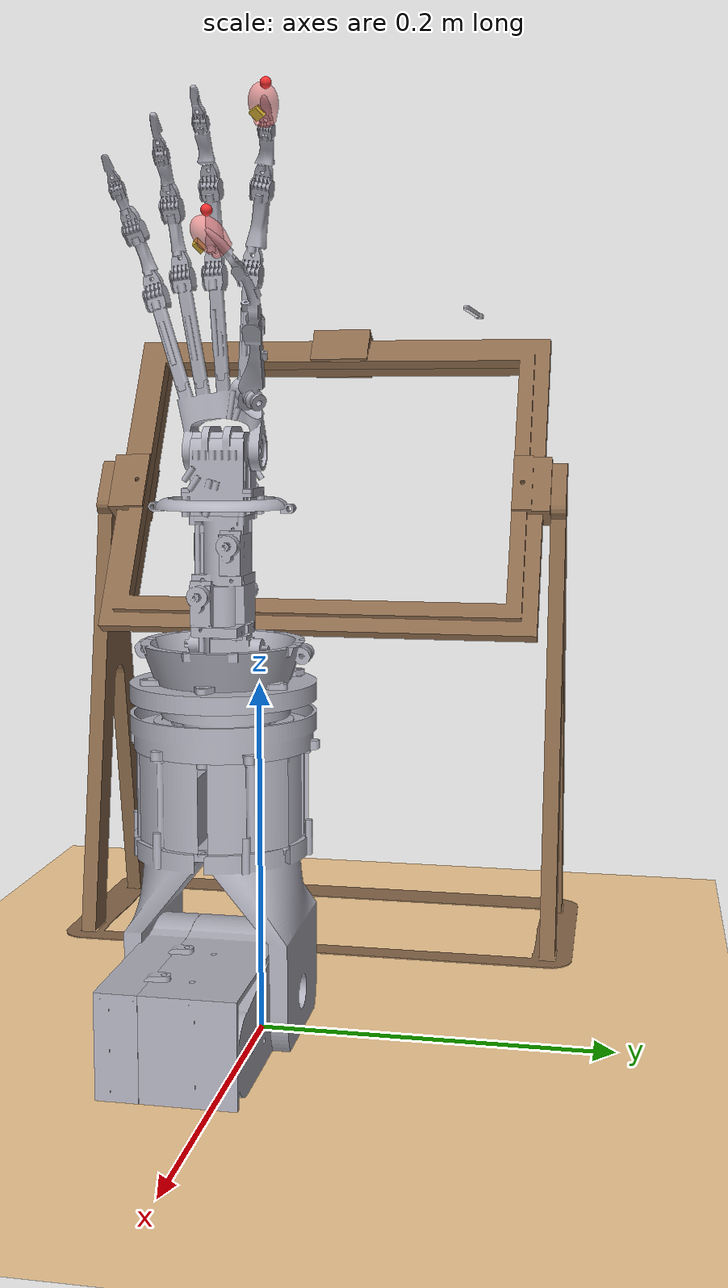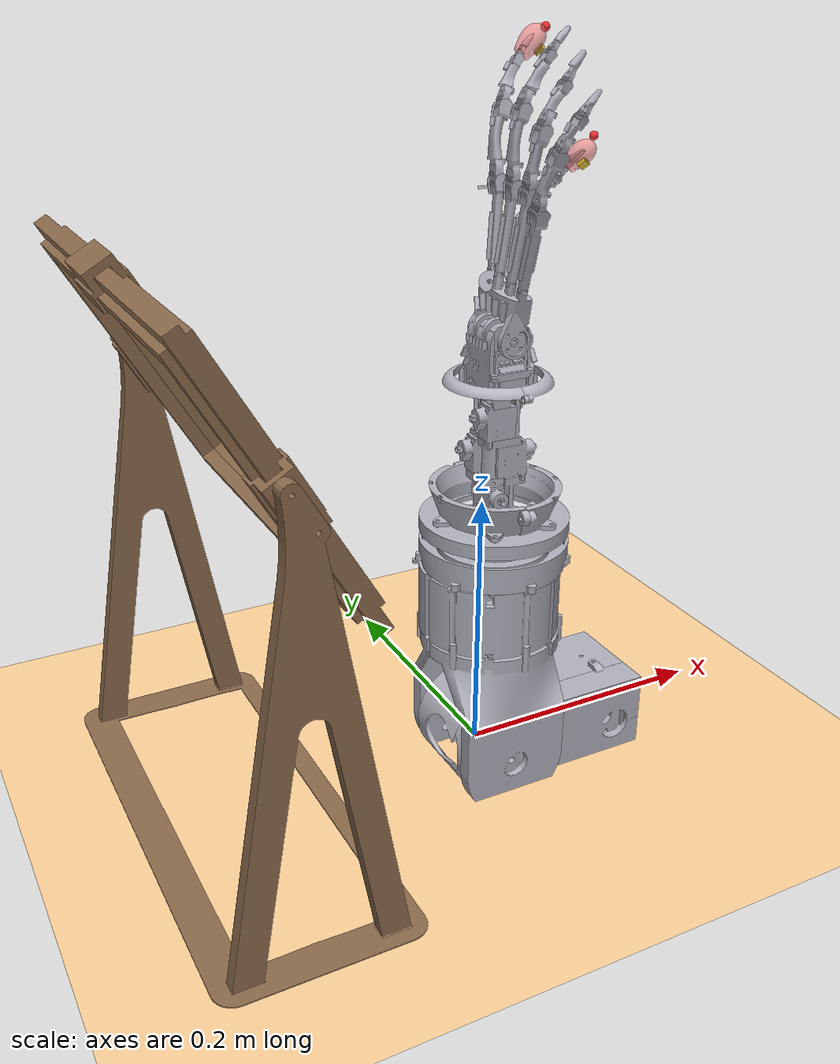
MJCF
<mujoco model="palm">

    <compiler angle="radian" meshdir="." />
    <option timestep="0.001" gravity="0 0 0" integrator="implicitfast" />

    <default>
        <!-- TUNE: contacts are OFF by default so the model loads and moves
             without self-intersecting meshes exploding the sim. Set
             contype="1" conaffinity="1" once you want grasping. -->
        <geom contype="0" conaffinity="0" rgba="0.7 0.7 0.75 1" />
        <!-- TUNE: damping/stiffness are guesses. Fit against hardware. -->
        <joint damping="0.5" armature="0.01" limited="true" />
        <position kp="150" kv="8" ctrllimited="true" />
    </default>

    <asset>
        <mesh name="base1" file="meshes/base1.stl" scale="0.001 0.001 0.001" />
        <mesh name="elbow_case2-v1" file="meshes/elbow_case2-v1.stl" scale="0.001 0.001 0.001" />
        <mesh name="elbow_main1" file="meshes/elbow_main1.stl" scale="0.001 0.001 0.001" />
        <mesh name="elbow_main2" file="meshes/elbow_main2.stl" scale="0.001 0.001 0.001" />
        <mesh name="case_midarm2" file="meshes/case_midarm2.stl" scale="0.001 0.001 0.001" />
        <mesh name="case_midarm" file="meshes/case_midarm.stl" scale="0.001 0.001 0.001" />
        <mesh name="midarm1" file="meshes/midarm1.stl" scale="0.001 0.001 0.001" />
        <mesh name="bearing_cap_midarm" file="meshes/bearing_cap_midarm.stl" scale="0.001 0.001 0.001" />
        <mesh name="bottom_rotation-wheel" file="meshes/bottom_rotation-wheel.stl" scale="0.001 0.001 0.001" />
        <mesh name="top_rotation-wheel" file="meshes/top_rotation-wheel.stl" scale="0.001 0.001 0.001" />
        <mesh name="inside_rotation_bearing_frame" file="meshes/inside_rotation_bearing_frame.stl" scale="0.001 0.001 0.001" />
        <mesh name="inside_rotation-cog" file="meshes/inside_rotation-cog.stl" scale="0.001 0.001 0.001" />
        <mesh name="inside_rotation_wheel" file="meshes/inside_rotation_wheel.stl" scale="0.001 0.001 0.001" />
        <mesh name="midarm_frame1" file="meshes/midarm_frame1.stl" scale="0.001 0.001 0.001" />
        <mesh name="midarm_frame2" file="meshes/midarm_frame2.stl" scale="0.001 0.001 0.001" />
        <mesh name="midarm_frame3" file="meshes/midarm_frame3.stl" scale="0.001 0.001 0.001" />
        <mesh name="midarm_frame4" file="meshes/midarm_frame4.stl" scale="0.001 0.001 0.001" />
        <mesh name="servo_base" file="meshes/servo_base.stl" scale="0.001 0.001 0.001" />
        <mesh name="finger_servo1" file="meshes/finger_servo1.stl" scale="0.001 0.001 0.001" />
        <mesh name="servo_wrist" file="meshes/servo_wrist.stl" scale="0.001 0.001 0.001" />
        <mesh name="wrist_servo_plat1" file="meshes/wrist_servo_plat1.stl" scale="0.001 0.001 0.001" />
        <mesh name="wrist_servo_plat2" file="meshes/wrist_servo_plat2.stl" scale="0.001 0.001 0.001" />
        <mesh name="wristframe_main" file="meshes/wristframe_main.stl" scale="0.001 0.001 0.001" />
        <mesh name="wristframe" file="meshes/wristframe.stl" scale="0.001 0.001 0.001" />
        <mesh name="wristframe2" file="meshes/wristframe2.stl" scale="0.001 0.001 0.001" />
        <mesh name="wrist" file="meshes/wrist.stl" scale="0.001 0.001 0.001" />
        <mesh name="saddle_1-1" file="meshes/saddle_1-1.stl" scale="0.001 0.001 0.001" />
        <mesh name="saddle_2-1" file="meshes/saddle_2-1.stl" scale="0.001 0.001 0.001" />
        <mesh name="thumb_mcp" file="meshes/thumb_mcp.stl" scale="0.001 0.001 0.001" />
        <mesh name="thumb_pip" file="meshes/thumb_pip.stl" scale="0.001 0.001 0.001" />
        <mesh name="thumb_tip" file="meshes/thumb_tip.stl" scale="0.001 0.001 0.001" />
        <mesh name="index_mcp" file="meshes/index_mcp.stl" scale="0.001 0.001 0.001" />
        <mesh name="index_pip" file="meshes/index_pip.stl" scale="0.001 0.001 0.001" />
        <mesh name="index_mip" file="meshes/index_mip.stl" scale="0.001 0.001 0.001" />
        <mesh name="index_tip" file="meshes/index_tip.stl" scale="0.001 0.001 0.001" />
        <mesh name="mid_mcp" file="meshes/mid_mcp.stl" scale="0.001 0.001 0.001" />
        <mesh name="middle_pip" file="meshes/middle_pip.stl" scale="0.001 0.001 0.001" />
        <mesh name="mid_mip" file="meshes/mid_mip.stl" scale="0.001 0.001 0.001" />
        <mesh name="mid_tip" file="meshes/mid_tip.stl" scale="0.001 0.001 0.001" />
        <mesh name="ring_mcp" file="meshes/ring_mcp.stl" scale="0.001 0.001 0.001" />
        <mesh name="ring_pip" file="meshes/ring_pip.stl" scale="0.001 0.001 0.001" />
        <mesh name="ring_mip" file="meshes/ring_mip.stl" scale="0.001 0.001 0.001" />
        <mesh name="ring_tip" file="meshes/ring_tip.stl" scale="0.001 0.001 0.001" />
        <mesh name="small_mcp" file="meshes/small_mcp.stl" scale="0.001 0.001 0.001" />
        <mesh name="small_pip" file="meshes/small_pip.stl" scale="0.001 0.001 0.001" />
        <mesh name="small_mip" file="meshes/small_mip.stl" scale="0.001 0.001 0.001" />
        <mesh name="small_tip" file="meshes/small_tip.stl" scale="0.001 0.001 0.001" />
        <mesh name="fr_base-1" file="meshes/base-1.stl" scale="0.001 0.001 0.001" />
        <mesh name="fr_arm1-1" file="meshes/arm1-1.stl" scale="0.001 0.001 0.001" />
        <mesh name="fr_arm2-1" file="meshes/arm2-1.stl" scale="0.001 0.001 0.001" />
        <mesh name="fr_frame_clipper1" file="meshes/frame_clipper1.stl" scale="0.001 0.001 0.001" />
        <mesh name="fr_frame_clipper2" file="meshes/frame_clipper2.stl" scale="0.001 0.001 0.001" />
        <mesh name="fr_outer_frame-1" file="meshes/outer_frame-1.stl" scale="0.001 0.001 0.001" />
        <mesh name="fr_inside_frame" file="meshes/inside_frame.stl" scale="0.001 0.001 0.001" />
        <mesh name="fr_top_clipper" file="meshes/top_clipper.stl" scale="0.001 0.001 0.001" />
        <mesh name="finger_pad" file="meshes/finger_pad.stl" scale="0.001 0.001 0.001" />
        <mesh name="craft_needle" file="meshes/Craft_Needle.STL" scale="0.001 0.001 0.001"/>
    </asset>

    <worldbody>
        <light directional="true" pos="-0.5 0.5 3" dir="0 0 -1" />

        <body name="sewing_frame" pos="-0.187 -0.135 0" euler="0 0 0">
            <geom name="fr_base-1_geom" type="mesh" mesh="fr_base-1" pos="0 0 0" euler="0 0 0" contype="1" conaffinity="1" rgba="0.55 0.42 0.30 1" />
            <geom name="fr_arm1-1_geom" type="mesh" mesh="fr_arm1-1" pos="0 0 0" euler="0 0 0" contype="1" conaffinity="1" rgba="0.55 0.42 0.30 1" />
            <geom name="fr_arm2-1_geom" type="mesh" mesh="fr_arm2-1" pos="0 0 0" euler="0 0 0" contype="1" conaffinity="1" rgba="0.55 0.42 0.30 1" />
            <geom name="fr_frame_clipper1_geom" type="mesh" mesh="fr_frame_clipper1" pos="0 0 0" euler="0 0 0" contype="1" conaffinity="1" rgba="0.55 0.42 0.30 1" />
            <geom name="fr_frame_clipper2_geom" type="mesh" mesh="fr_frame_clipper2" pos="0 0 0" euler="0 0 0" contype="1" conaffinity="1" rgba="0.55 0.42 0.30 1" />
            <geom name="fr_outer_frame-1_geom" type="mesh" mesh="fr_outer_frame-1" pos="0 0 0" euler="0 0 0" contype="1" conaffinity="1" rgba="0.55 0.42 0.30 1" />
            <geom name="fr_inside_frame_geom" type="mesh" mesh="fr_inside_frame" pos="0 0 0" euler="0 0 0" contype="1" conaffinity="1" rgba="0.55 0.42 0.30 1" />
            <geom name="fr_top_clipper_geom" type="mesh" mesh="fr_top_clipper" pos="0 0 0" euler="0 0 0" contype="1" conaffinity="1" rgba="0.55 0.42 0.30 1" />
        </body>

        <geom name="floor" pos="0 0 0" size="1 1 1" type="plane" rgba="1 0.83 0.61 0.5" contype="1" conaffinity="1" />

        <body name="base1" pos="0 0 0.43" euler="0 0 0">
            <geom name="base1_geom" type="mesh" mesh="base1" pos="0 0 0" euler="0 0 0" />
            <!-- HARDWARE: printed shell 0.106 + 40T steel pulley 0.303 + 20T steel pulley
                 0.073 + HTD5M-9 belt 0.015 + STS3215 elbow servo 0.060 = 0.557 kg. -->
            <inertial mass="0.557" pos="0.03507294455526667 -0.0033303212525474858 -0.40908124270524016" fullinertia="5.60e-04 1.53e-03 1.22e-03 4.55e-05 4.54e-06 -7.62e-07" />

            <!-- Rigid 54: base1 <-> elbow_case2 -->
            <body name="elbow_case2-v1" pos="0 0 4.399708861372683" euler="0 0 0">
                <geom name="elbow_case2-v1_geom" type="mesh" mesh="elbow_case2-v1" pos="0 0 0" euler="0 0 0" />
                <!-- HARDWARE: printed 0.072 + STS3215 rotation servo 0.060 = 0.132 kg. -->
                <inertial mass="0.132" pos="0.04384490458014511 -0.05333605265141133 -4.8088695397835695" fullinertia="9.30e-05 3.61e-04 2.92e-04 -5.67e-06 1.79e-06 -6.92e-08" />

                <!-- Revolute 3: elbow hinge -->
                <body name="elbow_main1" pos="5.879116354193498e-05 -0.0003142633200703493 -4.399999970086164" euler="1.8991159259421016e-14 -9.273428489272168e-17 0.0015654847778752356">
                    <joint name="elbow_pitch" type="hinge" axis="0.0015654841384419441 0.9999987746289554 -1.8991159259421016e-14" pos="-0.002206516384655231 0.013817346826342903 -0.4078658912865194" range="-1.57 1.57" />
                    <geom name="elbow_main1_geom" type="mesh" mesh="elbow_main1" pos="0 0 0" euler="0 0 0" />
                    <inertial mass="0.12482675968783168" pos="-0.0031999516665286946 0.012338962940966779 -0.3671555865065753" fullinertia="0.00017904554845469926 0.00023903218398388653 8.201842849256508e-05 -8.207704843175467e-07 4.334989205591768e-06 2.5905204598673402e-05" />

                    <!-- Rigid 32 -->
                    <body name="case_midarm2" pos="-0.0005856373134274425 -0.0037097083507749385 -0.0007999916076997952" euler="0.0 9.273428489272168e-17 0.0">
                        <geom name="case_midarm2_geom" type="mesh" mesh="case_midarm2" pos="0 0 0" euler="0 0 0" />
                        <inertial mass="0.013584836261824012" pos="-0.0042406704055164895 0.022487206023899985 -0.29127847036090293" fullinertia="2.925218775747141e-06 4.779773200650889e-06 1.992250720592794e-06 -1.0579573860103965e-18 1.337451232093883e-18 -6.235599878333697e-09" />
                    </body>

                    <body name="elbow_main2" pos="0 0 0" euler="0 0 0">
                        <geom name="elbow_main2_geom" type="mesh" mesh="elbow_main2" pos="0 0 0" euler="0 0 0" />
                        <inertial mass="0.12482675968783168" pos="-0.0071064458949155074 -0.05934883913683391 -0.3671555865065744" fullinertia="0.00017904554845480663 0.00023903218398391577 8.201842849263539e-05 -8.207704843271546e-07 -4.3349892056706e-06 -2.590520459903428e-05" />

                        <!-- Rigid 28 -->
                        <body name="midarm1" pos="0.0014800898424819071 0.0017835164029880919 0.0" euler="0.0 1.0029275792316747e-16 0.0">
                            <geom name="midarm1_geom" type="mesh" mesh="midarm1" pos="0 0 0" euler="0 0 0" />
                            <inertial mass="0.029727934696544413" pos="-0.0040213320354501435 -0.021633743159847008 -0.3191717320490354" fullinertia="1.5820078446935164e-05 1.5809691420619994e-05 3.1387163084745554e-05 -1.7013961397945483e-09 1.1869726489225961e-09 7.441834282023377e-09" />

                            <body name="case_midarm" pos="-0.002234456212781661 0.0002921278928187236 0.0002000000000002991" euler="0.0 -1.0029275792316723e-16 0.0">
                                <geom name="case_midarm_geom" type="mesh" mesh="case_midarm" pos="0 0 0" euler="0 0 0" />
                                <inertial mass="0.12628377228044554" pos="-0.004215377562160435 -0.028823801318405468 -0.2929115041768235" fullinertia="0.00011130091884202384 0.00015640355463477273 0.00021898625546859946 2.7687318896421037e-08 -1.481260823626248e-08 1.491732961914134e-06" />
                            </body>

                            <!-- Rigid 30 -->
                            <body name="bearing_cap_midarm" pos="0 0 0" euler="0 0 0">
                                <geom name="bearing_cap_midarm_geom" type="mesh" mesh="bearing_cap_midarm" pos="0 0 0" euler="0 0 0" />
                                <inertial mass="0.003082374386051848" pos="-0.004000000000017692 -0.021499999999998097 -0.31588390871514294" fullinertia="1.9264251954547695e-07 1.9264251945787302e-07 3.115764959885085e-07 2.6709661979359784e-21 1.4908115201206648e-19 1.5631880878149123e-21" />

                                <!--  forearm-fixed -->
                                <body name="bottom_rotation-wheel" pos="0 0 0" euler="0 0 0">
                                    <geom name="bottom_rotation-wheel_geom" type="mesh" mesh="bottom_rotation-wheel" pos="0 0 0" euler="0 0 0" />
                                    <inertial mass="0.586" pos="-0.004240670405602034 -0.02300890549373332 -0.2588942356149073" fullinertia="4.21e-04 4.21e-04 8.40e-04 0 0 0" />

                                    <!-- Rigid 34 -->
                                    <body name="inside_rotation_bearing_frame" pos="0 0 0" euler="0 0 0">
                                        <geom name="inside_rotation_bearing_frame_geom" type="mesh" mesh="inside_rotation_bearing_frame" pos="0 0 0" euler="0 0 0" />
                                        <inertial mass="0.019774581053232397" pos="-0.004249357056317103 -0.023984346311741643 -0.2597928786021008" fullinertia="1.3904302768571629e-05 1.461362683569025e-05 2.7324346202124834e-05 6.2594735133020655e-09 -1.2324888447809149e-09 -1.3678173916100963e-07" />
                                    </body>

                                    <body name="inside_rotation-cog" pos="0 0 0" euler="0 0 0">
                                        <geom name="inside_rotation-cog_geom" type="mesh" mesh="inside_rotation-cog" pos="0 0 0" euler="0 0 0" />
                                        <inertial mass="0.02806037897807346" pos="-0.004297657377514098 -0.022345962035489896 -0.2598835694570504" fullinertia="4.423584712511409e-06 4.422214192886104e-06 5.229709127693169e-06 3.860396889595496e-10 -3.4763095004740558e-09 -9.88886756183617e-09" />

                                        <body name="inside_rotation_wheel" pos="0.002229891622472083 0.0010517508828688715 -0.002000000000003439" euler="0.0 0.0 -0.08726646259971638">
                                            <geom name="inside_rotation_wheel_geom" type="mesh" mesh="inside_rotation_wheel" pos="0 0 0" euler="0 0 0" />
                                            <inertial mass="0.04648970405850455" pos="-0.004205524587639639 -0.023576406227836477 -0.24879430710835898" fullinertia="2.1700667053340904e-05 2.167852117777303e-05 3.3111923610036964e-05 -2.099044757774599e-09 6.543436638870734e-09 -1.0569914448806138e-07" />
                                        </body>
                                    </body>

                                    <!-- Revolute 5: forearm rotation.-->
                                    <body name="top_rotation-wheel" pos="0 0 0.0020000000000005257" euler ="0 0 0">
                                        <joint name="forearm_roll" type="hinge" axis="0.0 4.0939474033052545e-15 1.0" pos="-0.004240473500689968 -0.02300890514721359 -0.2393000149569177" range="-3.14 3.14" />
                                        <geom name="top_rotation-wheel_geom" type="mesh" mesh="top_rotation-wheel" pos="0 0 0" euler="0 0 0" />
                                        <inertial mass="0.022411307932975036" pos="-0.00424071790696933 -0.023008905494745716 -0.23417960972865293" fullinertia="2.3268450014598185e-05 2.376079359130991e-05 4.679615087053676e-05 -7.00500059027569e-16 1.2562717962530823e-12 -6.697658920529204e-17" />

                                        <!-- Rigid 35 / 36  -->
                                        <body name="midarm_frame1" pos="0 0 0" euler="0 0 0">
                                            <geom name="midarm_frame1_geom" type="mesh" mesh="midarm_frame1" pos="0 0 0" euler="0 0 0" />
                                            <inertial mass="0.013077326423712444" pos="0.020835609944592326 -0.02474901478052595 -0.2194016782383206" fullinertia="1.1560547491242423e-05 2.6772936934744626e-06 1.3244194631114897e-05 -6.126380151237948e-07 -1.4786353317516475e-08 3.0143183449181515e-08" />
                                        </body>
                                        <body name="midarm_frame2" pos="-7.780599008983147e-05 -8.90549378996644e-06 0.0010000000000000143" euler="0 0 0">
                                            <geom name="midarm_frame2_geom" type="mesh" mesh="midarm_frame2" pos="0 0 0" euler="0 0 0" />
                                            <inertial mass="0.012836510737604839" pos="-0.028700342847971464 -0.021466761270772034 -0.2191814680072605" fullinertia="1.172011083257977e-05 2.709589329331257e-06 1.3472572328040831e-05 -5.866310505461611e-07 1.4976603728608217e-08 2.8325411859588694e-09" />
                                        </body>
                                        <body name="midarm_frame3" pos="0 0 0" euler="0 0 0">
                                            <geom name="midarm_frame3_geom" type="mesh" mesh="midarm_frame3" pos="0 0 0" euler="0 0 0" />
                                            <inertial mass="0.003025213732166698" pos="0.015998924244424603 -0.02442620173825529 -0.13202139395423845" fullinertia="1.75793596555339e-06 3.541712297557402e-07 2.097606685938835e-06 -9.857766497657634e-08 -3.437342441588745e-09 2.4473019007743575e-10" />
                                        </body>
                                        <body name="midarm_frame4" pos="0 0 0" euler="0 0 0">
                                            <geom name="midarm_frame4_geom" type="mesh" mesh="midarm_frame4" pos="0 0 0" euler="0 0 0" />
                                            <inertial mass="0.0030694647215382194" pos="-0.024489548006821762 -0.02161250362971867 -0.13201971592620804" fullinertia="1.806245483020314e-06 3.773455286288751e-07 2.168894263171567e-06 -9.942967315904845e-08 3.6400504487865047e-09 -3.6367348285692264e-10" />
                                        </body>

                                        <!--  servo_base -->
                                        <body name="servo_base" pos="0 0 0" euler="0 0 0">
                                            <geom name="servo_base_geom" type="mesh" mesh="servo_base" pos="0 0 0" euler="0 0 0" />
                                            <inertial mass="0.023347936296700286" pos="-0.0038914566166743034 -0.02241088109570979 -0.181257503300401" fullinertia="2.424398791605222e-05 2.4246744330059852e-05 2.5570147435155526e-06 -4.2755498445289e-08 -6.126642254392419e-08 6.309809646552328e-08" />

                                            <!-- The six finger servos  -->
                                            <body name="finger_servo_a" pos="-1.6419447051174637e-05 -0.0011237598307833109 0.0001125561737196977" euler="0.0032159605642823386 0.0 1.787309509816767e-07">
                                                <geom name="finger_servo_a_geom" type="mesh" mesh="finger_servo1" pos="0 0 0" euler="0 0 0" />
                                                <inertial mass="0.009" pos="-0.011306280382565531 -0.02846435878880882 -0.21678562518528555" fullinertia="6.352904559631381e-07 3.60900116462562e-07 4.2430683233863283e-07 -9.193938643865093e-09 1.186052886856706e-09 3.406400141891381e-08" />
                                            </body>
                                            <body name="finger_servo_b" pos="-0.02564148509803546 -0.020136098036332584 0.029987615894584846" euler="0.0 0.0 1.570796325163613">
                                                <geom name="finger_servo_b_geom" type="mesh" mesh="finger_servo1" pos="0 0 0" euler="0 0 0" />
                                                <inertial mass="0.009" pos="-0.011306280382565556 -0.028464358788808954 -0.21678562518528532" fullinertia="6.352904559646076e-07 3.609001164641801e-07 4.2430683233859805e-07 -9.193938643868903e-09 1.1860528868295754e-09 3.406400141893336e-08" />
                                            </body>
                                            <body name="finger_servo_c" pos="-0.025470505317295694 -0.003099375363758216 0.0579999999999976" euler="0.0 0.0 1.570796328426179">
                                                <geom name="finger_servo_c_geom" type="mesh" mesh="finger_servo1" pos="0 0 0" euler="0 0 0" />
                                                <inertial mass="0.009" pos="-0.01130628038256555 -0.028464358788808958 -0.21678562518528532" fullinertia="6.352904559645453e-07 3.609001164642425e-07 4.2430683233859635e-07 -9.193938643867702e-09 1.1860528868179684e-09 3.406400141893218e-08" />
                                            </body>
                                            <body name="finger_servo_d" pos="0.01743691588395006 -0.04237825893728809 0.05799999999999707" euler="0.0 0.0 -1.5707963251636143">
                                                <geom name="finger_servo_d_geom" type="mesh" mesh="finger_servo1" pos="0 0 0" euler="0 0 0" />
                                                <inertial mass="0.009" pos="-0.011306280382565558 -0.028464358788808812 -0.2167856251852851" fullinertia="6.352904559637567e-07 3.6090011646285814e-07 4.2430683233861636e-07 -9.193938643872333e-09 1.1860528868958839e-09 3.406400141893717e-08" />
                                            </body>
                                            <body name="finger_servo_e" pos="-0.008676549695107541 -0.042022616700673705 -7.923914088987516e-05" euler="0.0 0.0 3.1415926519585105">
                                                <geom name="finger_servo_e_geom" type="mesh" mesh="finger_servo1" pos="0 0 0" euler="0 0 0" />
                                                <inertial mass="0.009" pos="-0.011306280382565561 -0.02846435878880897 -0.21678562518528555" fullinertia="6.35290455964011e-07 3.6090011646374684e-07 4.2430683233859434e-07 -9.193938643866284e-09 1.1860528868568937e-09 3.4064001418955615e-08" />
                                            </body>
                                            <body name="finger_servo_f" pos="0.01686256587887774 -0.025727558717797718 0.03005921085910973" euler="0.0 0.0 -1.570796328426176">
                                                <geom name="finger_servo_f_geom" type="mesh" mesh="finger_servo1" pos="0 0 0" euler="0 0 0" />
                                                <inertial mass="0.009" pos="-0.01130628038256555 -0.028464358788808836 -0.21678562518528532" fullinertia="6.352904559634943e-07 3.6090011646282336e-07 4.2430683233861615e-07 -9.193938643869707e-09 1.1860528868925388e-09 3.406400141893458e-08" />
                                            </body>

                                            <!-- Rigid 44/45/46 -->
                                            <body name="wristframe_main" pos="0.00015979850277995312 0.00028013238073132434 -0.00019999999999999575" euler="0 0 0">
                                                <geom name="wristframe_main_geom" type="mesh" mesh="wristframe_main" pos="0 0 0" euler="0 0 0" />
                                                <inertial mass="0.008694045258178242" pos="-0.0040573226062072245 -0.02217912981402472 -0.11569114975983423" fullinertia="2.2754811637514622e-06 3.3550914462177967e-06 2.4999927570124104e-06 1.2248954919014427e-07 -3.726647648626771e-09 4.077450016054208e-09" />
                                                <body name="wristframe2" pos="0.0 0.0 -0.0002999999999999936" euler="0 0 0">
                                                    <geom name="wristframe2_geom" type="mesh" mesh="wristframe2" pos="0 0 0" euler="0 0 0" />
                                                    <inertial mass="0.00028090855255269345" pos="-0.003970121212762107 -0.04072113733785346 -0.12437086991837439" fullinertia="7.779484720778308e-10 2.552582825970718e-08 2.531294522484558e-08 9.688739632833523e-12 4.2835830917410276e-11 -8.280630236312971e-11" />
                                                </body>
                                                <body name="wristframe" pos="0.0 0.0 -0.0003999999999999915" euler="0 0 0">
                                                    <geom name="wristframe_geom" type="mesh" mesh="wristframe" pos="0 0 0" euler="0 0 0" />
                                                    <inertial mass="0.000280711283068681" pos="-0.003981874831433221 -0.0037933949744008546 -0.12437149983606167" fullinertia="7.862965343392002e-10 2.5448095382091776e-08 2.5244059252010344e-08 -1.2324386504337753e-11 4.579534439546678e-11 8.64654796068446e-11" />
                                                </body>
                                            </body>

                                            <!-- NEW LINK: wrist servo plate -->
                                            <body name="wrist_servo_plat1" pos="0 0 0" euler="0 0 0">
                                                <geom name="wrist_servo_plat1_geom" type="mesh" mesh="wrist_servo_plat1" pos="0 0 0" euler="0 0 0" />
                                                <inertial mass="0.0043891308773027155" pos="-0.003999999999999604 -0.03864999999999999 -0.10250000000002361" fullinertia="1.2198050966128474e-07 2.4073500843131343e-07 1.219805099648461e-07 2.329340604949326e-21 1.9481757786848908e-20 1.6940658945086007e-20" />
                                            </body>
                                            <body name="wrist_servo_plat2" pos="0 0 0" euler="0 0 0">
                                                <geom name="wrist_servo_plat2_geom" type="mesh" mesh="wrist_servo_plat2" pos="0 0 0" euler="0 0 0" />
                                                <inertial mass="0.006667097769373416" pos="-0.003999999999999988 -0.004779864882288504 -0.10249999999984795" fullinertia="1.5784372489996933e-07 2.9671632439530644e-07 1.5784372158614917e-07 1.0587911840678754e-22 -1.6940658945086007e-21 3.218301683092714e-18" />
                                            </body>

                                            <!-- Rigid 47: wrist tilt servo. -->
                                            <body name="servo_wrist" pos="0 0 0" euler="0 0 0">
                                                <geom name="servo_wrist_geom" type="mesh" mesh="servo_wrist" pos="0 0 0" euler="0 0 0" />
                                                <!-- HARDWARE: modelled shell was 0.033; a real STS3215 is 0.060 kg. -->
                                                <inertial mass="0.060" pos="-0.00399999999825011 -0.022021370434721726 -0.11581973043045174" fullinertia="1.50e-05 1.30e-05 7.96e-06 0 0 -3.67e-09" />

                                                <!-- ====== Revolute 7: WRIST TILT ====== -->
                                                <body name="wrist" pos="0.0 0.0 0.0" euler="0 0 0">
                                                    <joint name="wrist_tilt" type="hinge" axis="0.0 -1.0 0.0" pos="-0.003999835972550843 -0.04030039564116414 -0.10249972381669999" range="-1.4 1.4" />
                                                    <geom name="wrist_geom" type="mesh" mesh="wrist" pos="0 0 0" euler="0 0 0" />
                                                    <inertial mass="0.011483437179705376" pos="-0.003881261433371234 -0.022861357731667087 -0.08278445454974236" fullinertia="3.5616397568421495e-06 1.6392654089561947e-06 2.473879444789054e-06 1.2305964638388166e-07 9.705613133191707e-09 8.232022960327823e-08" />

                                                    <!-- ============ SMALL FINGER (Rigid 48) ============ -->
                                                    <body name="small_mcp" pos="0.0 0.0 0.0" euler="0 0 0">
                                                        <geom name="small_mcp_geom" type="mesh" mesh="small_mcp" pos="0 0 0" euler="0 0 0" />
                                                        <inertial mass="0.0024577428669934017" pos="-0.0012295407710126312 -0.05226194963065594 -0.03904594718707084" fullinertia="6.500923231545896e-07 5.930038460974078e-07 7.625409322585354e-08 1.6959765414390602e-10 -2.443078928167238e-09 1.7038830566083342e-07" />
                                                        <body name="small_pip" pos="-0.000789515744247341 0.00015098060130656955 -0.0002969187878314017" euler="0 0 0">
                                                            <joint name="small_mcp_joint" type="hinge" axis="0.08693900000000004 0.962199 0.2580980000000001" pos="-0.0010264842557526593 -0.058609980601306566 -0.014823081212168606" range="-0.1 1.6" />
                                                            <geom name="small_pip_geom" type="mesh" mesh="small_pip" pos="0 0 0" euler="0 0 0" />
                                                            <inertial mass="0.00152795471808027" pos="0.0013752469895932083 -0.06462797123189488 0.0038868543135330636" fullinertia="1.8396760723129963e-07 1.7543427761324826e-07 3.838511781348671e-08 1.0096031994066817e-08 -3.707778727841684e-08 4.4153830191515445e-08" />
                                                            <body name="small_mip" pos="0.00013249079006423804 -0.00041490152936175307 -0.0011650989284978982" euler="0 0 0">
                                                                <joint name="small_pip_joint" type="hinge" axis="0.17486499999999996 0.9546360000000003 0.24102499999999996" pos="0.005471024954183102 -0.06821807907194483 0.020814017716329295" range="-0.1 1.6" />
                                                                <geom name="small_mip_geom" type="mesh" mesh="small_mip" pos="0 0 0" euler="0 0 0" />
                                                                <inertial mass="0.0006606102796946247" pos="0.009393706988579581 -0.07187018715519239 0.030310234813526748" fullinertia="2.7294682340885563e-08 2.945658960252257e-08 1.2397279735209406e-08 3.261776076090904e-09 -1.0513648339064246e-08 6.159657908416496e-09" />
                                                                <body name="small_tip" pos="-0.0005459779151107314 -4.279200114645221e-05 9.246457085431814e-05" euler="0 0 0">
                                                                    <joint name="small_mip_joint" type="hinge" axis="-0.03811 0.9734980000000002 0.22549700000000017" pos="0.015502002869293837 -0.07435828707079838 0.04059355314547497" range="-0.1 1.6" />
                                                                    <geom name="small_tip_geom" type="mesh" mesh="small_tip" pos="0 0 0" euler="0 0 0" />
                                                                    <inertial mass="0.0001971292481623935" pos="0.019359258548178188 -0.0761176765351247 0.04678146889886098" fullinertia="3.574667336993926e-09 4.541729028158009e-09 2.0497991113783282e-09 4.220942074545941e-10 -1.9645037647037292e-09 5.310086627171715e-10" />
                                                                </body>
                                                            </body>
                                                        </body>
                                                    </body>

                                                    <!-- ============ RING FINGER (Rigid 49) ============ -->
                                                    <body name="ring_mcp" pos="-0.00031156541099924443 -0.0011046694111574759 0.000396416233211003" euler="0.01843427540346903 -0.006532963368591079 -0.0008570995681038396">
                                                        <geom name="ring_mcp_geom" type="mesh" mesh="ring_mcp" pos="0 0 0" euler="0 0 0" />
                                                        <inertial mass="0.002668594756977188" pos="-0.00038794885006286563 -0.03814331609803275 -0.033097304788295694" fullinertia="8.799646500942756e-07 8.681580430320249e-07 4.998370402275883e-08 1.088301578636865e-08 -8.756773571178059e-08 1.0966128150339695e-07" />
                                                        <body name="ring_pip" pos="0.0015338537538980854 -5.981078142348828e-05 -0.0006742154314599544" euler="-0.00046225206013837406 0.0009489642061309624 -0.009057549024255495">
                                                            <joint name="ring_mcp_joint" type="hinge" axis="0.08683013435823332 0.9908000254990857 0.10380763683536424" pos="0.0006618738495637663 -0.04090999595075586 -0.004735903198501776" range="-0.1 1.6" />
                                                            <geom name="ring_pip_geom" type="mesh" mesh="ring_pip" pos="0 0 0" euler="0 0 0" />
                                                            <inertial mass="0.0015560114957082764" pos="0.002823715064633402 -0.04376429668402902 0.015351657241259978" fullinertia="1.9938926217805602e-07 1.9814564716396226e-07 2.3610867410635296e-08 2.392512732014134e-09 -3.225791451696813e-08 1.6778763655705693e-08" />
                                                            <body name="ring_mip" pos="-0.0007901502999586441 7.199174624024016e-05 -3.985962312277255e-06" euler="0 0 0">
                                                                <joint name="ring_pip_joint" type="hinge" axis="0.09063156708598416 0.9957242611781378 0.01784510397253184" pos="0.007263705837497509 -0.04436547335536138 0.03193816138054232" range="-0.1 1.6" />
                                                                <geom name="ring_mip_geom" type="mesh" mesh="ring_mip" pos="0 0 0" euler="0 0 0" />
                                                                <inertial mass="0.0007999906854067875" pos="0.013013012795754864 -0.04536189445750905 0.04397430954211423" fullinertia="4.485772903736961e-08 5.723340152703879e-08 1.985866372481365e-08 5.828685199477733e-10 -2.3208905733951556e-08 7.523135813329202e-10" />
                                                                <body name="ring_tip" pos="-0.0005397145964585442 -2.3735131764460043e-05 0.00012890901405169673" euler="0 0 0">
                                                                    <joint name="ring_mip_joint" type="hinge" axis="-0.033757504640993356 0.9985253576684019 0.04251819847551381" pos="0.02148489311312602 -0.04529576364098356 0.05618883051772424" range="-0.1 1.6" />
                                                                    <geom name="ring_tip_geom" type="mesh" mesh="ring_tip" pos="0 0 0" euler="0 0 0" />
                                                                    <inertial mass="0.00029331964192942075" pos="0.02664638597974688 -0.04574669714236132 0.06467250834431607" fullinertia="6.8515003597532604e-09 9.28553495075995e-09 3.583018125102493e-09 -3.144408630894058e-11 -3.88215674221878e-09 -1.1588475326477215e-10" />
                                                                </body>
                                                            </body>
                                                        </body>
                                                    </body>

                                                    <!-- ============ MIDDLE FINGER (Rigid 50) ============ -->
                                                    <body name="mid_mcp" pos="-0.0005240182568011341 -0.0011467264900412945 0.00023597091259659953" euler="0.01948252804266701 -0.007967872827755622 -8.95664837698179e-05">
                                                        <geom name="mid_mcp_geom" type="mesh" mesh="mid_mcp" pos="0 0 0" euler="0 0 0" />
                                                        <inertial mass="0.0026541538296917895" pos="-0.0010376075207271622 -0.02290524447540081 -0.03031923198523574" fullinertia="7.825889760753615e-07 7.931876649025819e-07 4.4874065632059313e-08 1.814929111549356e-09 -1.125300293415258e-07 1.3022820972357886e-08" />
                                                        <body name="middle_pip" pos="-0.0007963257251491182 7.379420816162164e-05 -0.0003077511547665169" euler="0 0 0">
                                                            <joint name="mid_mcp_joint" type="hinge" axis="0.08584389077654386 0.9961682003902238 0.016740644092967074" pos="0.0022368327400079423 -0.02280562373318712 -0.00355240991699242" range="-0.1 1.6" />
                                                            <geom name="middle_pip_geom" type="mesh" mesh="middle_pip" pos="0 0 0" euler="0 0 0" />
                                                            <inertial mass="0.0020292895269779085" pos="0.003360474078227266 -0.023394611083197344 0.0206584163018469" fullinertia="3.674594432583019e-07 3.660150345192189e-07 2.768216292928215e-08 -1.1519397897287846e-09 -4.168502220809524e-08 -3.8252817910685405e-09" />
                                                            <body name="mid_mip" pos="0.00020593726901296629 -1.4775875343962103e-05 -2.0792085947255423e-05" euler="0 0 0">
                                                                <joint name="middle_pip_joint" type="hinge" axis="0.08937895450370159 0.9946429474503823 -0.05193400855933568" pos="0.00730553149044213 -0.022359950448443657 0.04146294442135288" range="-0.1 1.6" />
                                                                <geom name="mid_mip_geom" type="mesh" mesh="mid_mip" pos="0 0 0" euler="0 0 0" />
                                                                <inertial mass="0.0010550296682912698" pos="0.015193144007027306 -0.023005099460496878 0.056064054836282" fullinertia="8.032551580454653e-08 1.0775632916354405e-07 3.739060681141915e-08 1.0913310647535964e-10 -4.674385256506918e-08 9.904696377708296e-11" />
                                                                <body name="mid_tip" pos="-0.0005217307046265966 2.7229624762292878e-05 0.00018848966921075858" euler="0 0 0">
                                                                    <joint name="mid_mip_joint" type="hinge" axis="0.0399269226836975 0.9986328594451941 -0.033748849496326144" pos="0.025886376160294624 -0.022578957964246374 0.07083390647289452" range="-0.1 1.6" />
                                                                    <geom name="mid_tip_geom" type="mesh" mesh="mid_tip" pos="0 0 0" euler="0 0 0" />
                                                                    <inertial mass="0.0002423237860749246" pos="0.031556971627425705 -0.02304046934559008 0.07729651107367415" fullinertia="3.718433516683201e-09 6.374071920929954e-09 3.639241239890688e-09 -6.56752845041331e-11 -2.9317343390183468e-09 -4.895491835961122e-11" />
                                                                </body>
                                                            </body>
                                                        </body>
                                                    </body>

                                                    <body name="index_mcp" pos="-0.0003526266266092973 0.0003982775442219139 -0.0002941852922304315" euler="-0.00594268141189588 -0.0052883739470886435 0.0004200889433589895">
                                                        <geom name="index_mcp_geom" type="mesh" mesh="index_mcp" pos="0 0 0" euler="0 0 0" />
                                                        <inertial mass="0.002523375437248965" pos="0.0007630455438845261 -0.006235017668486397 -0.029622945310892365" fullinertia="7.203919251045835e-07 7.176102024294442e-07 3.7889198260418135e-08 -6.350465712908806e-09 -7.204797574267683e-08 -5.568731692885728e-08" />
                                                        <body name="index_pip" pos="-0.0018818761480394808 -0.0008815298043677631 -0.00028810464600790084" euler="0 0 0">
                                                            <joint name="index_mcp_joint" type="hinge" axis="0.0829114977452631 0.9889924352920814 -0.12255769909179605" pos="0.003997787519080691 -0.0022930342707544993 -0.0036026135443139188" range="-0.05 1.2" />
                                                            <geom name="index_pip_geom" type="mesh" mesh="index_pip" pos="0 0 0" euler="0 0 0" />
                                                            <inertial mass="0.0021444203613001857" pos="0.00616249713405128 0.001113157538089684 0.019767080551606347" fullinertia="3.6778656000740344e-07 3.644932303677848e-07 5.064241210672507e-08 -1.289619079192424e-08 -6.642796013679761e-08 -6.123343780222579e-08" />
                                                            <body name="index_mip" pos="-0.0007905232980045404 6.774307021503057e-05 -4.470760212160751e-06" euler="0 0 0">
                                                                <!-- Axis negated (was sign-flipped in the export) so all
                                                                     three index joints flex with positive angles. -->
                                                                <joint name="index_pip_joint" type="hinge" axis="0.08446158877691883 0.9707984145951304 -0.22453428016643545" pos="0.012657508965446986 0.005544495701699416 0.040038639036086024" range="-0.07 1.58" />
                                                                <geom name="index_mip_geom" type="mesh" mesh="index_mip" pos="0 0 0" euler="0 0 0" />
                                                                <inertial mass="0.0009714570127921473" pos="0.01819648811754023 0.007770043746342353 0.052982889174823654" fullinertia="5.978342976135752e-08 6.979635583189134e-08 2.4211093733600867e-08 -5.600830653989934e-09 -2.6294449246389445e-08 -1.0575520825231265e-08" />
                                                                <body name="index_tip" pos="-0.0005223320767289047 0.00010832322490450245 0.00015462217363761973" euler="0 0 0">
                                                                    <joint name="index_mip_joint" type="hinge" axis="0.13623559085602027 0.9666259862093993 -0.21696551011581627" pos="0.02714214619949691 0.010446881348426989 0.06597982917587512" range="-0.03 0.52" />
                                                                    <geom name="index_tip_geom" type="mesh" mesh="index_tip" pos="0 0 0" euler="0 0 0" />
                                                                    <site name="index_fingertip" pos="0.049663 0.014976 0.082441" size="0.003" rgba="1 0.2 0.2 1" />
                                                                    <geom name="index_pad" type="mesh" mesh="finger_pad" pos="0 0 0"
                                                                          contype="1" conaffinity="1" condim="4" friction="1.2 0.02 0.001"
                                                                          solref="0.01 1" rgba="1 0.5 0.5 0.6" />
                                                                    <site name="index_touch_site" type="box" pos="0.0416 0.0087 0.0693" zaxis="0.6622 -0.2582 -0.7034" size="0.003 0.003 0.0015" rgba="0.85 0.7 0.2 1" />
                                                                    <!-- TUNE: index fingertip mass/length changes when
                                                                         you add the soft tip. -->
                                                                    <inertial mass="0.00022374756261357617" pos="0.031581250153481295 0.010651476627436785 0.07194223856503318" fullinertia="3.0123603941717283e-09 4.307530852387817e-09 2.4495403212269777e-09 -2.50132877986767e-10 -1.9127097604265335e-09 -1.4430492850129868e-10" />
                                                                </body>
                                                            </body>
                                                        </body>
                                                    </body>

                                                    <body name="saddle_2-1" pos="-0.03960019073649625 0.0229600158415783 -0.01811433259381779" euler="-0.3980927427866039 -0.5706305012311939 0.12210328989722553">
                                                        <geom name="saddle_2-1_geom" type="mesh" mesh="saddle_2-1" pos="0 0 0" euler="0 0 0" />
                                                        <inertial mass="0.0003283443058449118" pos="-0.0017265047715689479 -0.0061243580874248485 -0.07244958103825341" fullinertia="3.3936276071904313e-09 3.180738293003167e-09 3.4753285999458993e-09 -2.9030020960274333e-10 1.5666654563752676e-10 2.24311188665142e-10" />

                                                        <body name="saddle_1-1" pos="-0.0017960141048693323 0.0003713580911486147 7.187524922972255e-05" euler="0.0007100086627156696 -0.016562144226071357 0.08568431893378362">
                                                            <geom name="saddle_1-1_geom" type="mesh" mesh="saddle_1-1" pos="0 0 0" euler="0 0 0" />
                                                            <inertial mass="0.00013195097259749224" pos="0.0036971860451918415 0.00010559639146807617 -0.07635541364692247" fullinertia="1.0400942294384975e-09 1.1333127048646865e-09 9.433034532040586e-10 2.398528456893289e-10 -1.412756983807064e-10 -1.7137161712883162e-10" />
                                                        </body>

                                                        <body name="thumb_mcp" pos="0.04403730748006923 -0.05399453293709578 -0.04179291369196527" euler="1.053581057897081 0.5929112057469996 -0.8604616211169168">
                                                            <joint name="thumb_mcp_joint" type="hinge" axis="0.5790970265895501 0.7024620126630433 -0.41375694128621937" pos="0.0015861023140251972 -0.002550801519351907 -0.07507431667551627" range="-1.27 0.1" />
                                                            <geom name="thumb_mcp_geom" type="mesh" mesh="thumb_mcp" pos="0 0 0" euler="0 0 0" />
                                                            <inertial mass="0.0031964878294729855" pos="0.006487333144093596 0.010654646439088266 -0.05238180539651145" fullinertia="6.359653778281489e-07 5.189994243964036e-07 2.339197508499623e-07 -6.785844122453571e-08 -1.1484263924318462e-07 -2.609606985324891e-07" />
                                                            <body name="thumb_pip" pos="-0.00023616191244172136 0.0006105496303930203 -0.000630848660770571" euler="-1.3877787807814447e-16 1.1102230246251558e-16 -5.273559366969486e-16">
                                                                <joint name="thumb_pip_joint" type="hinge" axis="0.9585194140790065 0.0920248878503799 -0.2697634456162764" pos="0.012950834935384691 0.0220193435119454 -0.03165933512261687" range="-0.05 1.25" />
                                                                <geom name="thumb_pip_geom" type="mesh" mesh="thumb_pip" pos="0 0 0" euler="0 0 0" />
                                                                <inertial mass="0.0011426311195010183" pos="0.015008214362312792 0.026625529322924703 -0.01809805044800632" fullinertia="1.0254209747600245e-07 1.03806195308209e-07 1.853417495990764e-08 -4.2045143305080416e-09 -1.7987383422350828e-08 -1.87475532922439e-08" />
                                                                <body name="thumb_tip" pos="-0.0007707276830984534 0.0009567503239839525 -0.0018910635154813205" euler="0.08127419428278157 0.024605983372784385 -0.021151550760479348">
                                                                    <joint name="thumb_tip_joint" type="hinge" axis="0.9282695280475818 0.2916469346832644 -0.23077503896474005" pos="0.019798405851262933 0.02828320946718574 -0.0003099632301785091" range="-0.07 1.6" />
                                                                    <geom name="thumb_tip_geom" type="mesh" mesh="thumb_tip" pos="0 0 0" euler="0 0 0" />
                                                                    <!-- Moulded pad centre, same measurement. 33.6mm from the IP anchor. -->
                                                                    <site name="thumb_fingertip" pos="0.029295 0.033755 0.031467" size="0.003" rgba="1 0.2 0.2 1" />
                                                                    <!-- Same cap mesh, moved from the index frame onto the thumb print:
                                                                         distal end, finger axis and palmar side matched. -->
                                                                    <geom name="thumb_pad" type="mesh" mesh="finger_pad" pos="0.01117 0.00991 -0.06252" quat="0.84408 -0.17353 -0.20530 -0.46398"
                                                                          contype="1" conaffinity="1" condim="4" friction="1.2 0.02 0.001"
                                                                          solref="0.01 1" rgba="1 0.5 0.5 0.6" />
                                                                    <site name="thumb_touch_site" type="box" pos="0.0259 0.0183 0.0170" zaxis="0.2312 -0.9431 -0.2392" size="0.003 0.003 0.0015" rgba="0.85 0.7 0.2 1" />
                                                                    <!-- TUNE: thumb fingertip mass/length changes when
                                                                         you add the soft tip. -->
                                                                    <inertial mass="0.0003721523600156387" pos="0.02162607049174598 0.02784281296254021 0.010352768596363577" fullinertia="1.2865109962965175e-08 1.3725466630540284e-08 2.0819735411911066e-09 1.1929345267125193e-10 -2.5803675084034894e-09 1.083964558977824e-09" />
                                                                </body>
                                                            </body>
                                                        </body>
                                                    </body>
                                                </body>
                                            </body>
                                        </body>
                                    </body>
                                </body>
                            </body>
                        </body>
                    </body>
                </body>
            </body>
        </body>

        <body name="needle" pos="-0.0379 0.0288 0.3946" euler="0 0 0">
            <freejoint name="needle_free" />
            <geom name="needle_geom" type="mesh" mesh="craft_needle" pos="0 0 0" euler="0 0 0"
                  contype="1" conaffinity="1" rgba="0.85 0.85 0.88 1" mass="0.0005" />
        </body>
    </worldbody>

    <equality>
        <!--weld name="needle_grip" body1="thumb_tip" body2="needle"
              relpose="0 0 0 1 0 0 0" solref="0.005 1" /-->

        <joint name="index_pip_couple" joint1="index_pip_joint" joint2="index_mcp_joint" polycoef="0 1.314 0 0 0" solref="0.005 1" />
        <joint name="index_dip_couple" joint1="index_mip_joint" joint2="index_mcp_joint" polycoef="0 0.429 0 0 0" solref="0.005 1" />
        <joint name="thumb_ip_couple"  joint1="thumb_tip_joint" joint2="thumb_pip_joint" polycoef="0 1.273 0 0 0" solref="0.005 1" />
    </equality>

    <actuator>
        <position name="a_elbow_pitch"     joint="elbow_pitch"       ctrlrange="-1.57 1.57" />
        <position name="a_forearm_roll"    joint="forearm_roll"      kp="600"   ctrlrange="-3.14 3.14" />
        <position name="a_wrist_tilt"      joint="wrist_tilt"        kp="600"   ctrlrange="-1.4 1.4" />

        <position name="a_index_mcp"       joint="index_mcp_joint"   ctrlrange="-0.05 1.2" />

        <position name="a_mid_mcp"         joint="mid_mcp_joint"     ctrlrange="-0.1 1.6" />
        <position name="a_mid_pip"         joint="middle_pip_joint"  ctrlrange="-0.1 1.6" />
        <position name="a_mid_mip"         joint="mid_mip_joint"     ctrlrange="-0.1 1.6" />

        <position name="a_ring_mcp"        joint="ring_mcp_joint"    ctrlrange="-0.1 1.6" />
        <position name="a_ring_pip"        joint="ring_pip_joint"    ctrlrange="-0.1 1.6" />
        <position name="a_ring_mip"        joint="ring_mip_joint"    ctrlrange="-0.1 1.6" />

        <position name="a_small_mcp"       joint="small_mcp_joint"   ctrlrange="-0.1 1.6" />
        <position name="a_small_pip"       joint="small_pip_joint"   ctrlrange="-0.1 1.6" />
        <position name="a_small_mip"       joint="small_mip_joint"   ctrlrange="-0.1 1.6" />

        <position name="a_thumb_mcp"       joint="thumb_mcp_joint"   ctrlrange="-1.27 0.1" />   <!-- adduction -->
        <position name="a_thumb_pip"       joint="thumb_pip_joint"   ctrlrange="-0.05 1.25" /> <!-- thumb flexion (leader) -->
    </actuator>
    <sensor>
        <touch name="index_touch" site="index_touch_site" />
        <touch name="thumb_touch" site="thumb_touch_site" />
    </sensor>
</mujoco>
